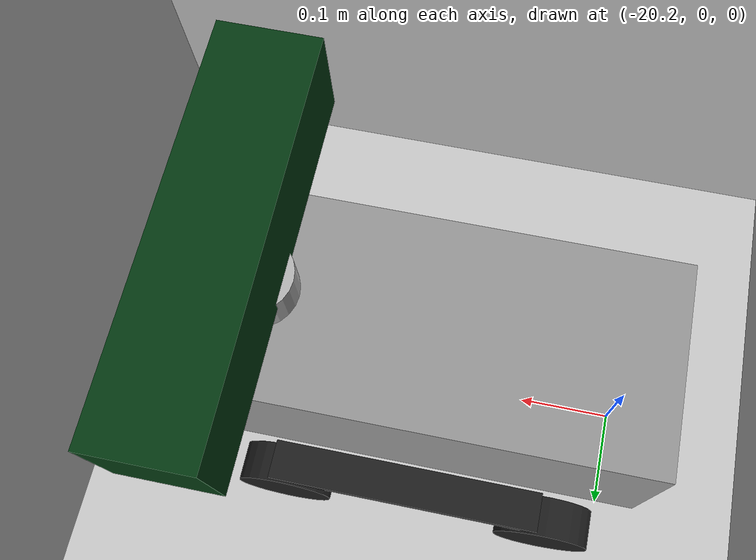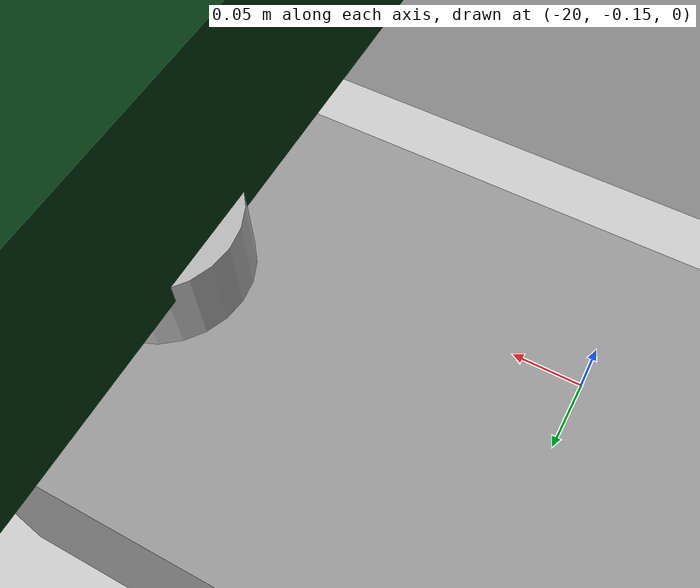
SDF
<sdf version="1.5">
 <world name="default">
  <include><uri>model://sun</uri></include>
  <include><uri>model://ground_plane</uri></include>
  <include><uri>model://checkerboard_plane</uri><name>goal</name><pose>20 0 0.01 0 0 0</pose></include>
  <model name="tankbot0">
   <pose>-20 0 0 0 0 0</pose>
   <include><uri>model://tankbot</uri></include>
   <plugin name="tankbot_control" filename="libtank_control_plugin.so"/>
   <plugin name="launch" filename="liblaunch_plugin.so"/>
  </model>
 </world>
</sdf>

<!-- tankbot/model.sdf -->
<sdf version="1.5">
  <!-- http://sdformat.org/spec?elem=sensor&ver=1.5 -->
  <model name="tankbot">
    <link name="chassis">
      <pose>0 0 0.135  0 0 0</pose>
      <inertial>
        <pose>0.04650000000000001 0 0  0 0 0</pose>
        <mass>2.0</mass>
        <inertia>
          <ixx>0.012592666666666665</ixx>
          <iyy>0.04085416666666667</iyy>
          <izz>0.043813500000000005</izz>
          <ixy>0</ixy>
          <ixz>0</ixz>
          <iyz>0</iyz>
        </inertia>
      </inertial>
      <collision name="collision">
        <geometry>
          <box>
            <size>0.465 0.216 0.17</size>
          </box>
        </geometry>
      </collision>
      <visual name="visual">
        <geometry>
          <box>
            <size>0.465 0.216 0.17</size>
          </box>
        </geometry>
        <material>
          <script>
            <uri>file://media/materials/scripts/gazebo.material</uri>
            <name>Gazebo/Grey</name>
          </script>
        </material>
      </visual>
    </link>

    <link name="wheel_fl">
      <pose>
        0.1395 0.14200000000000002 0.05
        -1.5707963267948966 -0.08726646259971647 0
      </pose>
      <inertial>
        <mass>0.25</mass>
        <inertia>
          <ixx>0.00018958333333333338</ixx>
          <iyy>0.00018958333333333338</iyy>
          <izz>0.00031250000000000006</izz>
          <ixy>0</ixy>
          <ixz>0</ixz>
          <iyz>0</iyz>
        </inertia>
      </inertial>
      <collision name="collision">
        <geometry>
          <cylinder>
            <radius>0.05</radius>
            <length>0.04</length>
          </cylinder>
        </geometry>
      </collision>
      <visual name="wheel_fl">
        <geometry>
          <cylinder>
            <radius>0.05</radius>
            <length>0.04</length>
          </cylinder>
        </geometry>
        <material>
          <script>
            <uri>file://media/materials/scripts/gazebo.material</uri>
            <name>Gazebo/Black</name>
          </script>
        </material>
      </visual>
    </link>

    <joint name="wheel_fl_drive" type="revolute">
      <parent>chassis</parent>
      <child>wheel_fl</child>
      <axis>
        <xyz>0 0 1</xyz>
      </axis>
    </joint>

    <link name="chain_l_up">
      <pose>
        0.0098 0.14 0.1
        0.0 0.0 0.0
      </pose>
      <gravity>0</gravity>
      <collision name="collision">
        <geometry>
          <box>
            <size>0.28 0.04 0.01</size>
          </box>
        </geometry>
      </collision>
      <visual name="visual">
        <geometry>
          <box>
            <size>0.28 0.04 0.01</size>
          </box>
        </geometry>
        <material>
          <script>
            <uri>file://media/materials/scripts/gazebo.material</uri>
            <name>Gazebo/Black</name>
          </script>
        </material>
      </visual>
    </link>

    <link name="chain_r_up">
      <pose>
        0.0098 -0.14 0.1
        0.0 0.0 0.0
      </pose>
      <gravity>0</gravity>
      <collision name="collision">
        <geometry>
          <box>
            <size>0.28 0.04 0.01</size>
          </box>
        </geometry>
      </collision>
      <visual name="visual">
        <geometry>
          <box>
            <size>0.28 0.04 0.01</size>
          </box>
        </geometry>
        <material>
          <script>
            <uri>file://media/materials/scripts/gazebo.material</uri>
            <name>Gazebo/Black</name>
          </script>
        </material>
      </visual>
    </link>

    <joint name="chain_up_joint" type="revolute">
      <parent>chassis</parent>
      <child>chain_r_up</child>
    </joint>

    <joint name="chain_up_2_joint" type="revolute">
      <parent>chassis</parent>
      <child>chain_l_up</child>
    </joint>

    <link name="wheel_fr">
      <pose>
        0.1395 -0.14200000000000002 0.05
        -1.5707963267948966 -0.08726646259971647 0
      </pose>
      <inertial>
        <mass>0.25</mass>
        <inertia>
          <ixx>0.00018958333333333338</ixx>
          <iyy>0.00018958333333333338</iyy>
          <izz>0.00031250000000000006</izz>
          <ixy>0</ixy>
          <ixz>0</ixz>
          <iyz>0</iyz>
        </inertia>
      </inertial>
      <collision name="collision">
        <geometry>
          <cylinder>
            <radius>0.05</radius>
            <length>0.04</length>
          </cylinder>
        </geometry>
      </collision>
      <visual name="visual">
        <geometry>
          <cylinder>
            <radius>0.05</radius>
            <length>0.04</length>
          </cylinder>
        </geometry>
        <material>
          <script>
            <uri>file://media/materials/scripts/gazebo.material</uri>
            <name>Gazebo/Black</name>
          </script>
        </material>
      </visual>
    </link>

    <joint name="wheel_fr_drive" type="revolute">
      <parent>chassis</parent>
      <child>wheel_fr</child>
      <axis>
        <xyz>0 0 1</xyz>
      </axis>
    </joint>

    <link name="wheel_rl">
      <pose>
       -0.1395 0.14200000000000002 0.05
       -1.5707963267948966 0 0
      </pose>
      <inertial>
        <mass>0.25</mass>
        <inertia>
          <ixx>0.00018958333333333338</ixx>
          <iyy>0.00018958333333333338</iyy>
          <izz>0.00031250000000000006</izz>
          <ixy>0</ixy>
          <ixz>0</ixz>
          <iyz>0</iyz>
        </inertia>
      </inertial>
      <collision name="collision">
        <geometry>
          <cylinder>
            <radius>0.05</radius>
            <length>0.04</length>
          </cylinder>
        </geometry>
      </collision>
      <visual name="visual">
        <geometry>
          <cylinder>
            <radius>0.05</radius>
            <length>0.04</length>
          </cylinder>
        </geometry>
        <material>
          <script>
            <uri>file://media/materials/scripts/gazebo.material</uri>
            <name>Gazebo/Black</name>
          </script>
        </material>
      </visual>
    </link>
    <joint name="wheel_rl_drive" type="revolute">
      <parent>chassis</parent>
      <child>wheel_rl</child>
      <axis>
        <xyz>0 0 1</xyz>
      </axis>
    </joint>

    <link name="wheel_rr">
      <pose>
       -0.1395 -0.14200000000000002 0.05
       -1.5707963267948966 0 0
      </pose>
      <inertial>
        <mass>0.25</mass>
        <inertia>
          <ixx>0.00018958333333333338</ixx>
          <iyy>0.00018958333333333338</iyy>
          <izz>0.00031250000000000006</izz>
          <ixy>0</ixy>
          <ixz>0</ixz>
          <iyz>0</iyz>
        </inertia>
      </inertial>
      <collision name="collision">
        <geometry>
          <cylinder>
            <radius>0.05</radius>
            <length>0.04</length>
          </cylinder>
        </geometry>
      </collision>
      <visual name="visual">
        <geometry>
          <cylinder>
            <radius>0.05</radius>
            <length>0.04</length>
          </cylinder>
        </geometry>
        <material>
          <script>
            <uri>file://media/materials/scripts/gazebo.material</uri>
            <name>Gazebo/Black</name>
          </script>
        </material>
      </visual>
    </link>
    <joint name="wheel_rr_drive" type="revolute">
      <parent>chassis</parent>
      <child>wheel_rr</child>
      <axis>
        <xyz>0 0 1</xyz>
      </axis>
    </joint>

     <include>
      <uri>model://ultrasonic_sensor</uri>
      <pose>
        0.18 0.0 0.24
        0.0 0.0 0.0
      </pose>
    </include>

    <joint name="sonar_joint" type="fixed">
      <child>ultrasonic_sensor::link</child>
      <parent>chassis</parent>
    </joint>

    <include>
      <uri>model://camera_sensor</uri>
      <pose>
        0.2 0.0 0.3
        0.0 0.0 0.0
      </pose>
    </include>

    <joint name="camera_joint" type="fixed">
      <child>camera_sensor::link</child>
      <parent>chassis</parent>
    </joint>

  </model>
</sdf>

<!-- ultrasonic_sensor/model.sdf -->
<sdf version="1.6">
  <model name="ultrasonic_sensor">
    <pose>0 0 0.02 0 0 0</pose>
    <link name="link">

      <inertial>
        <mass>0.1</mass>
      </inertial>

      <visual name="visual">
        <geometry>
          <cylinder>
            <radius>0.04</radius>
            <length>0.04</length>
          </cylinder>
        </geometry>
      </visual>

      <collision name="collision-base">
        <pose>0 0 -0.0145 0 0 0</pose>
        <geometry>
          <box>
            <size>0.05 0.05 0.041</size>
          </box>
        </geometry>
      </collision>

      <collision name="collision-top">
        <pose>0 0 0.0205 0 0 0</pose>
        <geometry>
          <cylinder>
            <radius>0.021</radius>
            <length>0.029</length>
          </cylinder>
        </geometry>
      </collision>

      <sensor name="sonar" type="sonar">
        <pose>0.04 0 0 0 1.5 3.14</pose>
        <sonar>
          <min>0</min>
          <max>3</max>
          <radius>0.3</radius>
        </sonar>
        <plugin name="sonar" filename="libSonarPlugin.so" />
        <always_on>1</always_on>
        <update_rate>30</update_rate>
        <visualize>true</visualize>
      </sensor>
    </link>
  </model>
</sdf>

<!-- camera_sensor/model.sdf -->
<sdf version="1.10">
    <model name="camera_sensor_model">

        <link name="camera">
        <pose >0.0 0 0.0 0 0 0</pose>
            <visual name='camera visual'>
                <pose>0 0 0 0 0 0</pose>
                <geometry>
                    <box>
                        <size>0.1 0.4 0.1</size>
                    </box>
                </geometry>
                <material>
                    <ambient>0.015996293361446288 0.22696587349938613 0.07036009568874305 1</ambient>
                    <diffuse>0.015996293361446288 0.22696587349938613 0.07036009568874305 1</diffuse>
                    <specular>0.1 0.1 0.1 1</specular>
                    <emissive>0 0 0 1</emissive>
                </material>
            </visual>
            <collision name='camera collision'>
                <pose>0.3 0 0 0.2 0 0</pose>
                <geometry>
                    <box>
                        <size>0.1 0.4 0.1</size>
                    </box>
                </geometry>
            </collision>
            <inertial>
                <mass>1</mass>
                <inertia>
                    <ixx>0.16666666666666666</ixx>
                    <ixy>0</ixy>
                    <ixz>0</ixz>
                    <iyy>0.16666666666666666</iyy>
                    <iyz>0</iyz>
                    <izz>0.16666666666666666</izz>
                </inertia>
            </inertial>
            <sensor name="camera" type="camera">
                <always_on>true</always_on>
                <visualize>true</visualize>
                <update_rate>30</update_rate>
                <topic>camera/image_raw</topic>
                <gz_frame_id>camera_rgb_frame</gz_frame_id>
                <camera name="intel_realsense_r200">
                <camera_info_topic>camera/camera_info</camera_info_topic>
                <horizontal_fov>1.02974</horizontal_fov>
                <image>
                    <width>1920</width>
                    <height>1080</height>
                    <format>R8G8B8</format>
                </image>
                <clip>
                    <near>0.02</near>
                    <far>300</far>
                </clip>
                <noise>
                    <type>gaussian</type>
                    <mean>0.0</mean>
                    <stddev>0.007</stddev>
                </noise>
                </camera>
        </sensor>
        </link>

    </model>

</sdf>

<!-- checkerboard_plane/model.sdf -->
<sdf version="1.5">
  <model name="checkerboard_plane">
    <static>true</static>
    <link name="link">
      <collision name="collision">
        <geometry>
          <plane>
            <normal>0 0 1</normal>
            <size>2000 2000</size>
          </plane>
        </geometry>
        <surface>
          <friction>
            <ode>
              <mu>100</mu>
              <mu2>50</mu2>
            </ode>
          </friction>
        </surface>
      </collision>
      <visual name="visual">
        <cast_shadows>false</cast_shadows>
        <geometry>
          <plane>
            <normal>0 0 1</normal>
            <size>2000 2000</size>
          </plane>
        </geometry>
        <material>
          <script>
            <uri>model://checkerboard_plane/materials/scripts</uri>
            <uri>model://checkerboard_plane/materials/textures</uri>
            <name>Checkerboard/Checkerboard</name>
          </script>
        </material>
      </visual>
    </link>
  </model>
</sdf>
